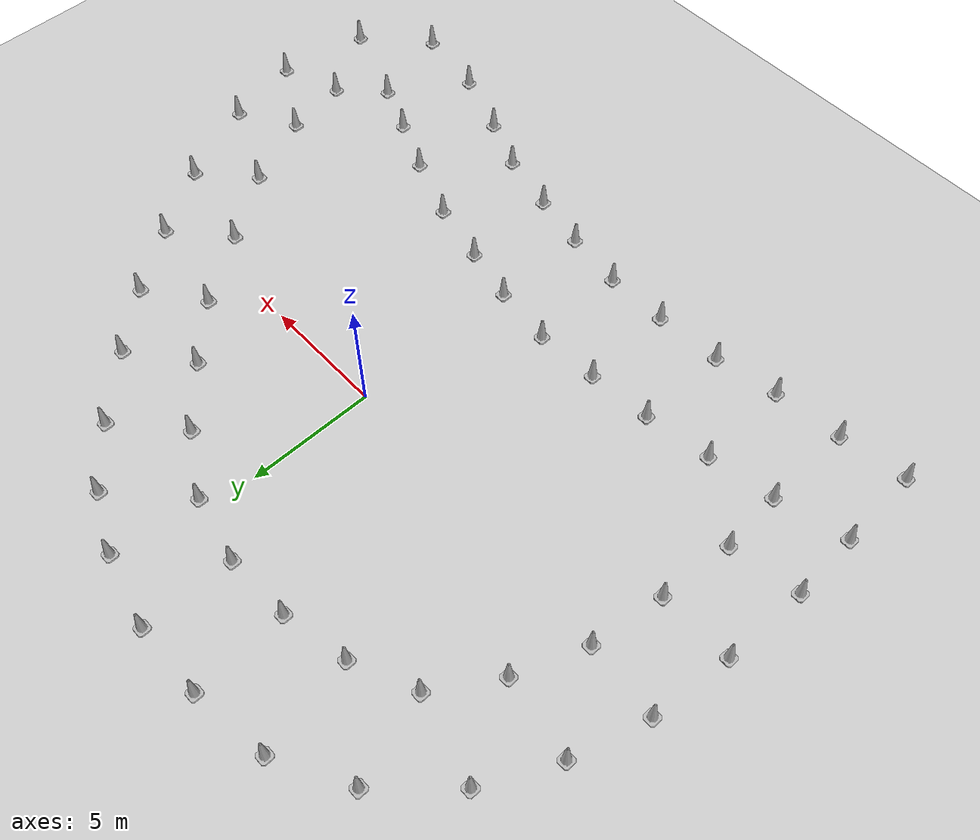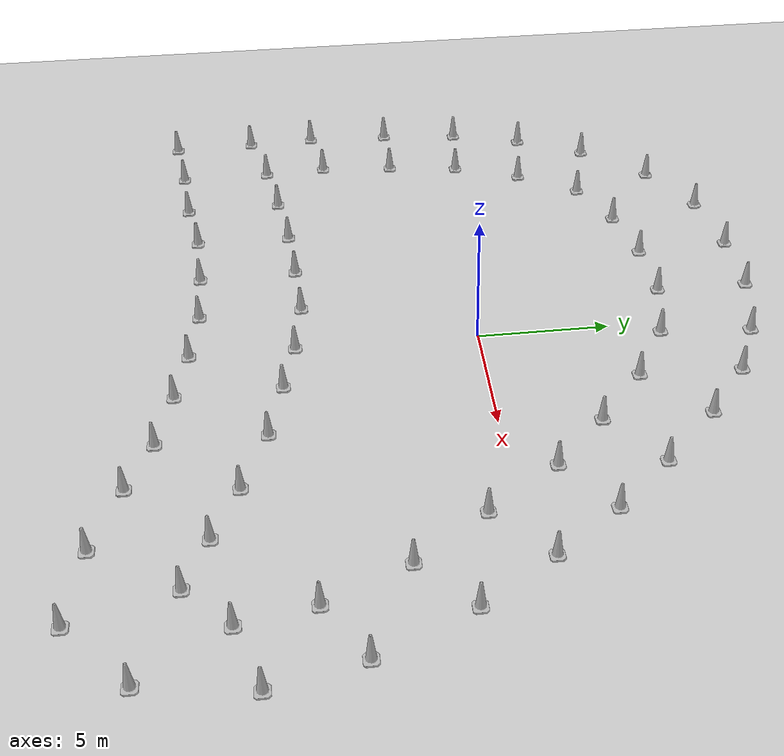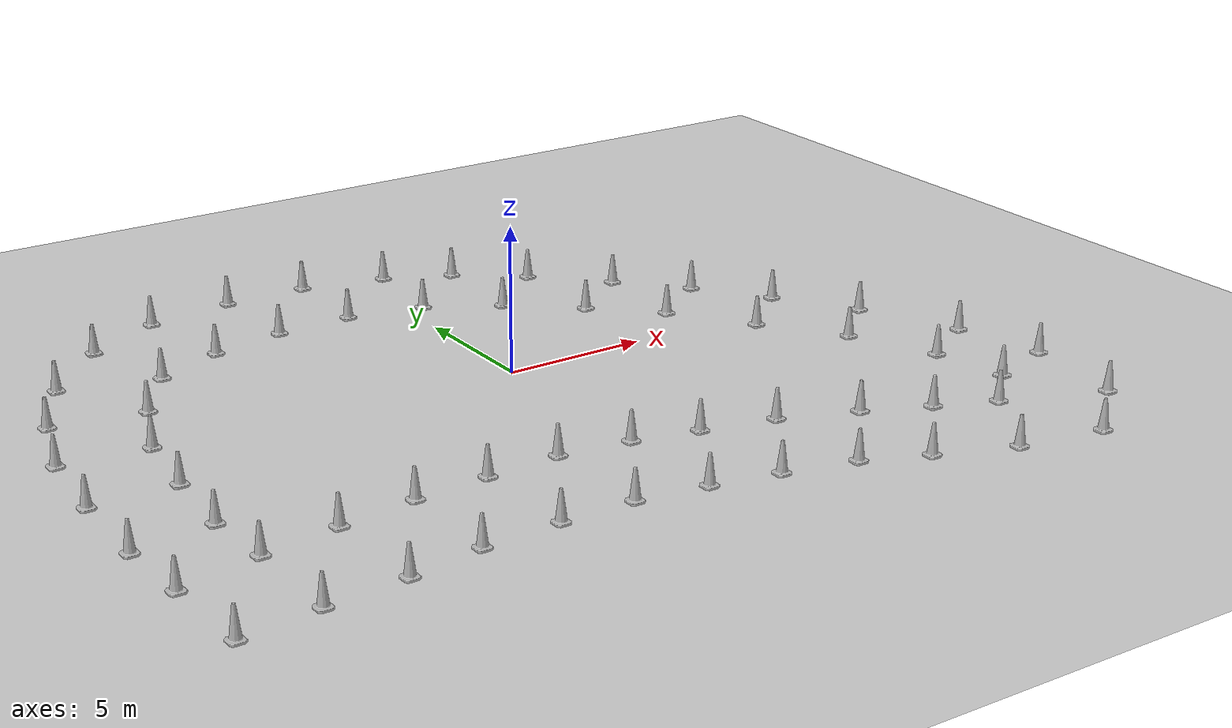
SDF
<sdf version="1.6">
 <world name="default">
  <light name="sun" type="directional">
   <pose>0 0 10 0 -0 0</pose>
   <diffuse>0.8 0.8 0.8 1</diffuse>
   <specular>0.2 0.2 0.2 1</specular>
   <attenuation>
    <range>1000</range>
    <constant>0.9</constant>
    <linear>0.01</linear>
    <quadratic>0.001</quadratic>
   </attenuation>
   <direction>-0.5 0.1 -0.9</direction>
  </light>
  <model name="ground_plane">
   <static>1</static>
   <link name="link">
    <collision name="collision">
     <geometry><plane><normal>0 0 1</normal><size>100 100</size></plane></geometry>
     <surface><friction><ode><mu>100</mu><mu2>50</mu2></ode></friction></surface>
    </collision>
    <visual name="visual">
     <cast_shadows>0</cast_shadows>
     <geometry><plane><normal>0 0 1</normal><size>100 100</size></plane></geometry>
     <material>
      <script><uri>file://media/materials/scripts/gazebo.material</uri><name>Gazebo/Grey</name></script>
     </material>
    </visual>
   </link>
  </model>
  <gravity>0 0 -9.8</gravity>
  <magnetic_field>6e-06 2.3e-05 -4.2e-05</magnetic_field>
  <atmosphere type="adiabatic"/>
  <physics name="default_physics" default="0" type="ode">
   <max_step_size>0.001</max_step_size>
   <real_time_factor>1</real_time_factor>
   <real_time_update_rate>1000</real_time_update_rate>
  </physics>
  <scene><ambient>0.4 0.4 0.4 1</ambient><background>0.7 0.7 0.7 1</background><shadows>1</shadows></scene>
  <audio><device>default</device></audio>
  <spherical_coordinates>
   <surface_model>EARTH_WGS84</surface_model>
   <latitude_deg>0</latitude_deg>
   <longitude_deg>0</longitude_deg>
   <elevation>0</elevation>
   <heading_deg>0</heading_deg>
  </spherical_coordinates>
  <model name="Construction Cone red">
   <link name="link">
    <collision name="collision">
     <geometry>
      <mesh><scale>10 10 10</scale><uri>model://construction_cone_red/meshes/construction_cone.dae</uri></mesh>
     </geometry>
    </collision>
    <visual name="visual">
     <geometry>
      <mesh><scale>10 10 10</scale><uri>model://construction_cone_red/meshes/construction_cone.dae</uri></mesh>
     </geometry>
    </visual>
    <inertial>
     <inertia><ixx>1</ixx><ixy>0</ixy><ixz>0</ixz><iyy>1</iyy><iyz>0</iyz><izz>1</izz></inertia>
     <mass>1</mass>
    </inertial>
   </link>
   <pose>-7.39961 6.86128 -0 0 -0 0</pose>
  </model>
  <model name="Construction Cone red_clone">
   <link name="link">
    <collision name="collision">
     <geometry>
      <mesh><scale>10 10 10</scale><uri>model://construction_cone_red/meshes/construction_cone.dae</uri></mesh>
     </geometry>
    </collision>
    <visual name="visual">
     <geometry>
      <mesh><scale>10 10 10</scale><uri>model://construction_cone_red/meshes/construction_cone.dae</uri></mesh>
     </geometry>
    </visual>
    <inertial>
     <inertia><ixx>1</ixx><ixy>0</ixy><ixz>0</ixz><iyy>1</iyy><iyz>0</iyz><izz>1</izz></inertia>
     <mass>1</mass>
    </inertial>
   </link>
   <pose>-4.7845 7.3824 0 -0 -0 -0</pose>
  </model>
  <model name="Construction Cone red_clone_0">
   <link name="link">
    <collision name="collision">
     <geometry>
      <mesh><scale>10 10 10</scale><uri>model://construction_cone_red/meshes/construction_cone.dae</uri></mesh>
     </geometry>
    </collision>
    <visual name="visual">
     <geometry>
      <mesh><scale>10 10 10</scale><uri>model://construction_cone_red/meshes/construction_cone.dae</uri></mesh>
     </geometry>
    </visual>
    <inertial>
     <inertia><ixx>1</ixx><ixy>0</ixy><ixz>0</ixz><iyy>1</iyy><iyz>0</iyz><izz>1</izz></inertia>
     <mass>1</mass>
    </inertial>
   </link>
   <pose>-2.07393 7.46969 -0 0 -0 0</pose>
  </model>
  <model name="Construction Cone red_clone_1">
   <link name="link">
    <collision name="collision">
     <geometry>
      <mesh><scale>10 10 10</scale><uri>model://construction_cone_red/meshes/construction_cone.dae</uri></mesh>
     </geometry>
    </collision>
    <visual name="visual">
     <geometry>
      <mesh><scale>10 10 10</scale><uri>model://construction_cone_red/meshes/construction_cone.dae</uri></mesh>
     </geometry>
    </visual>
    <inertial>
     <inertia><ixx>1</ixx><ixy>0</ixy><ixz>0</ixz><iyy>1</iyy><iyz>0</iyz><izz>1</izz></inertia>
     <mass>1</mass>
    </inertial>
   </link>
   <pose>0.613594 6.90702 -0 0 -0 0</pose>
  </model>
  <model name="Construction Cone red_clone_2">
   <link name="link">
    <collision name="collision">
     <geometry>
      <mesh><scale>10 10 10</scale><uri>model://construction_cone_red/meshes/construction_cone.dae</uri></mesh>
     </geometry>
    </collision>
    <visual name="visual">
     <geometry>
      <mesh><scale>10 10 10</scale><uri>model://construction_cone_red/meshes/construction_cone.dae</uri></mesh>
     </geometry>
    </visual>
    <inertial>
     <inertia><ixx>1</ixx><ixy>0</ixy><ixz>0</ixz><iyy>1</iyy><iyz>0</iyz><izz>1</izz></inertia>
     <mass>1</mass>
    </inertial>
   </link>
   <pose>3.06336 5.50508 -1e-06 2e-06 2e-06 0</pose>
  </model>
  <model name="Construction Cone red_clone_3">
   <link name="link">
    <collision name="collision">
     <geometry>
      <mesh><scale>10 10 10</scale><uri>model://construction_cone_red/meshes/construction_cone.dae</uri></mesh>
     </geometry>
    </collision>
    <visual name="visual">
     <geometry>
      <mesh><scale>10 10 10</scale><uri>model://construction_cone_red/meshes/construction_cone.dae</uri></mesh>
     </geometry>
    </visual>
    <inertial>
     <inertia><ixx>1</ixx><ixy>0</ixy><ixz>0</ixz><iyy>1</iyy><iyz>0</iyz><izz>1</izz></inertia>
     <mass>1</mass>
    </inertial>
   </link>
   <pose>5.34375 3.62293 -0 0 -0 0</pose>
  </model>
  <model name="Construction Cone red_clone_4">
   <link name="link">
    <collision name="collision">
     <geometry>
      <mesh><scale>10 10 10</scale><uri>model://construction_cone_red/meshes/construction_cone.dae</uri></mesh>
     </geometry>
    </collision>
    <visual name="visual">
     <geometry>
      <mesh><scale>10 10 10</scale><uri>model://construction_cone_red/meshes/construction_cone.dae</uri></mesh>
     </geometry>
    </visual>
    <inertial>
     <inertia><ixx>1</ixx><ixy>0</ixy><ixz>0</ixz><iyy>1</iyy><iyz>0</iyz><izz>1</izz></inertia>
     <mass>1</mass>
    </inertial>
   </link>
   <pose>7.43832 1.64441 -0 0 -1e-06 0</pose>
  </model>
  <model name="Construction Cone red_clone_5">
   <link name="link">
    <collision name="collision">
     <geometry>
      <mesh><scale>10 10 10</scale><uri>model://construction_cone_red/meshes/construction_cone.dae</uri></mesh>
     </geometry>
    </collision>
    <visual name="visual">
     <geometry>
      <mesh><scale>10 10 10</scale><uri>model://construction_cone_red/meshes/construction_cone.dae</uri></mesh>
     </geometry>
    </visual>
    <inertial>
     <inertia><ixx>1</ixx><ixy>0</ixy><ixz>0</ixz><iyy>1</iyy><iyz>0</iyz><izz>1</izz></inertia>
     <mass>1</mass>
    </inertial>
   </link>
   <pose>9.36342 -1.01193 -0 0 -0 0</pose>
  </model>
  <model name="Construction Cone red_clone_6">
   <link name="link">
    <collision name="collision">
     <geometry>
      <mesh><scale>10 10 10</scale><uri>model://construction_cone_red/meshes/construction_cone.dae</uri></mesh>
     </geometry>
    </collision>
    <visual name="visual">
     <geometry>
      <mesh><scale>10 10 10</scale><uri>model://construction_cone_red/meshes/construction_cone.dae</uri></mesh>
     </geometry>
    </visual>
    <inertial>
     <inertia><ixx>1</ixx><ixy>0</ixy><ixz>0</ixz><iyy>1</iyy><iyz>0</iyz><izz>1</izz></inertia>
     <mass>1</mass>
    </inertial>
   </link>
   <pose>11.2968 -3.64403 -0 0 -0 0</pose>
  </model>
  <model name="Construction Cone red_clone_7">
   <link name="link">
    <collision name="collision">
     <geometry>
      <mesh><scale>10 10 10</scale><uri>model://construction_cone_red/meshes/construction_cone.dae</uri></mesh>
     </geometry>
    </collision>
    <visual name="visual">
     <geometry>
      <mesh><scale>10 10 10</scale><uri>model://construction_cone_red/meshes/construction_cone.dae</uri></mesh>
     </geometry>
    </visual>
    <inertial>
     <inertia><ixx>1</ixx><ixy>0</ixy><ixz>0</ixz><iyy>1</iyy><iyz>0</iyz><izz>1</izz></inertia>
     <mass>1</mass>
    </inertial>
   </link>
   <pose>12.6487 -6.60335 -1e-05 -0 -0 -0</pose>
  </model>
  <model name="Construction Cone red_clone_8">
   <link name="link">
    <collision name="collision">
     <geometry>
      <mesh><scale>10 10 10</scale><uri>model://construction_cone_red/meshes/construction_cone.dae</uri></mesh>
     </geometry>
    </collision>
    <visual name="visual">
     <geometry>
      <mesh><scale>10 10 10</scale><uri>model://construction_cone_red/meshes/construction_cone.dae</uri></mesh>
     </geometry>
    </visual>
    <inertial>
     <inertia><ixx>1</ixx><ixy>0</ixy><ixz>0</ixz><iyy>1</iyy><iyz>0</iyz><izz>1</izz></inertia>
     <mass>1</mass>
    </inertial>
   </link>
   <pose>11.5226 -10.7455 -0 0 -0 0</pose>
  </model>
  <model name="Construction Cone red_clone_9">
   <link name="link">
    <collision name="collision">
     <geometry>
      <mesh><scale>10 10 10</scale><uri>model://construction_cone_red/meshes/construction_cone.dae</uri></mesh>
     </geometry>
    </collision>
    <visual name="visual">
     <geometry>
      <mesh><scale>10 10 10</scale><uri>model://construction_cone_red/meshes/construction_cone.dae</uri></mesh>
     </geometry>
    </visual>
    <inertial>
     <inertia><ixx>1</ixx><ixy>0</ixy><ixz>0</ixz><iyy>1</iyy><iyz>0</iyz><izz>1</izz></inertia>
     <mass>1</mass>
    </inertial>
   </link>
   <pose>13.144 -9.19348 -0 0 -0 0</pose>
  </model>
  <model name="Construction Cone red_clone_10">
   <link name="link">
    <collision name="collision">
     <geometry>
      <mesh><scale>10 10 10</scale><uri>model://construction_cone_red/meshes/construction_cone.dae</uri></mesh>
     </geometry>
    </collision>
    <visual name="visual">
     <geometry>
      <mesh><scale>10 10 10</scale><uri>model://construction_cone_red/meshes/construction_cone.dae</uri></mesh>
     </geometry>
    </visual>
    <inertial>
     <inertia><ixx>1</ixx><ixy>0</ixy><ixz>0</ixz><iyy>1</iyy><iyz>0</iyz><izz>1</izz></inertia>
     <mass>1</mass>
    </inertial>
   </link>
   <pose>9.50159 -9.89972 -0 0 -1e-06 0</pose>
  </model>
  <model name="Construction Cone red_clone_11">
   <link name="link">
    <collision name="collision">
     <geometry>
      <mesh><scale>10 10 10</scale><uri>model://construction_cone_red/meshes/construction_cone.dae</uri></mesh>
     </geometry>
    </collision>
    <visual name="visual">
     <geometry>
      <mesh><scale>10 10 10</scale><uri>model://construction_cone_red/meshes/construction_cone.dae</uri></mesh>
     </geometry>
    </visual>
    <inertial>
     <inertia><ixx>1</ixx><ixy>0</ixy><ixz>0</ixz><iyy>1</iyy><iyz>0</iyz><izz>1</izz></inertia>
     <mass>1</mass>
    </inertial>
   </link>
   <pose>7.31105 -8.93569 -0 0 -0 0</pose>
  </model>
  <model name="Construction Cone red_clone_12">
   <link name="link">
    <collision name="collision">
     <geometry>
      <mesh><scale>10 10 10</scale><uri>model://construction_cone_red/meshes/construction_cone.dae</uri></mesh>
     </geometry>
    </collision>
    <visual name="visual">
     <geometry>
      <mesh><scale>10 10 10</scale><uri>model://construction_cone_red/meshes/construction_cone.dae</uri></mesh>
     </geometry>
    </visual>
    <inertial>
     <inertia><ixx>1</ixx><ixy>0</ixy><ixz>0</ixz><iyy>1</iyy><iyz>0</iyz><izz>1</izz></inertia>
     <mass>1</mass>
    </inertial>
   </link>
   <pose>4.73701 -7.9611 -0 0 -0 0</pose>
  </model>
  <model name="Construction Cone red_clone_13">
   <link name="link">
    <collision name="collision">
     <geometry>
      <mesh><scale>10 10 10</scale><uri>model://construction_cone_red/meshes/construction_cone.dae</uri></mesh>
     </geometry>
    </collision>
    <visual name="visual">
     <geometry>
      <mesh><scale>10 10 10</scale><uri>model://construction_cone_red/meshes/construction_cone.dae</uri></mesh>
     </geometry>
    </visual>
    <inertial>
     <inertia><ixx>1</ixx><ixy>0</ixy><ixz>0</ixz><iyy>1</iyy><iyz>0</iyz><izz>1</izz></inertia>
     <mass>1</mass>
    </inertial>
   </link>
   <pose>2.21819 -7.37293 -0 0 -0 0</pose>
  </model>
  <model name="Construction Cone red_clone_14">
   <link name="link">
    <collision name="collision">
     <geometry>
      <mesh><scale>10 10 10</scale><uri>model://construction_cone_red/meshes/construction_cone.dae</uri></mesh>
     </geometry>
    </collision>
    <visual name="visual">
     <geometry>
      <mesh><scale>10 10 10</scale><uri>model://construction_cone_red/meshes/construction_cone.dae</uri></mesh>
     </geometry>
    </visual>
    <inertial>
     <inertia><ixx>1</ixx><ixy>0</ixy><ixz>0</ixz><iyy>1</iyy><iyz>0</iyz><izz>1</izz></inertia>
     <mass>1</mass>
    </inertial>
   </link>
   <pose>-0.013315 -6.86463 -8e-06 0 1e-06 0</pose>
  </model>
  <model name="Construction Cone red_clone_15">
   <link name="link">
    <collision name="collision">
     <geometry>
      <mesh><scale>10 10 10</scale><uri>model://construction_cone_red/meshes/construction_cone.dae</uri></mesh>
     </geometry>
    </collision>
    <visual name="visual">
     <geometry>
      <mesh><scale>10 10 10</scale><uri>model://construction_cone_red/meshes/construction_cone.dae</uri></mesh>
     </geometry>
    </visual>
    <inertial>
     <inertia><ixx>1</ixx><ixy>0</ixy><ixz>0</ixz><iyy>1</iyy><iyz>0</iyz><izz>1</izz></inertia>
     <mass>1</mass>
    </inertial>
   </link>
   <pose>-2.46811 -6.54172 -0 0 -0 0</pose>
  </model>
  <model name="Construction Cone red_clone_16">
   <link name="link">
    <collision name="collision">
     <geometry>
      <mesh><scale>10 10 10</scale><uri>model://construction_cone_red/meshes/construction_cone.dae</uri></mesh>
     </geometry>
    </collision>
    <visual name="visual">
     <geometry>
      <mesh><scale>10 10 10</scale><uri>model://construction_cone_red/meshes/construction_cone.dae</uri></mesh>
     </geometry>
    </visual>
    <inertial>
     <inertia><ixx>1</ixx><ixy>0</ixy><ixz>0</ixz><iyy>1</iyy><iyz>0</iyz><izz>1</izz></inertia>
     <mass>1</mass>
    </inertial>
   </link>
   <pose>-5.01525 -6.67318 -1e-05 0 -0 0</pose>
  </model>
  <model name="Construction Cone red_clone_17">
   <link name="link">
    <collision name="collision">
     <geometry>
      <mesh><scale>10 10 10</scale><uri>model://construction_cone_red/meshes/construction_cone.dae</uri></mesh>
     </geometry>
    </collision>
    <visual name="visual">
     <geometry>
      <mesh><scale>10 10 10</scale><uri>model://construction_cone_red/meshes/construction_cone.dae</uri></mesh>
     </geometry>
    </visual>
    <inertial>
     <inertia><ixx>1</ixx><ixy>0</ixy><ixz>0</ixz><iyy>1</iyy><iyz>0</iyz><izz>1</izz></inertia>
     <mass>1</mass>
    </inertial>
   </link>
   <pose>-9.80902 5.8137 -0 0 -0 0</pose>
  </model>
  <model name="Construction Cone red_clone_20">
   <link name="link">
    <collision name="collision">
     <geometry>
      <mesh><scale>10 10 10</scale><uri>model://construction_cone_red/meshes/construction_cone.dae</uri></mesh>
     </geometry>
    </collision>
    <visual name="visual">
     <geometry>
      <mesh><scale>10 10 10</scale><uri>model://construction_cone_red/meshes/construction_cone.dae</uri></mesh>
     </geometry>
    </visual>
    <inertial>
     <inertia><ixx>1</ixx><ixy>0</ixy><ixz>0</ixz><iyy>1</iyy><iyz>0</iyz><izz>1</izz></inertia>
     <mass>1</mass>
    </inertial>
   </link>
   <pose>-11.3247 3.45221 -0 0 -1e-06 0</pose>
  </model>
  <model name="Construction Cone red_clone_21">
   <link name="link">
    <collision name="collision">
     <geometry>
      <mesh><scale>10 10 10</scale><uri>model://construction_cone_red/meshes/construction_cone.dae</uri></mesh>
     </geometry>
    </collision>
    <visual name="visual">
     <geometry>
      <mesh><scale>10 10 10</scale><uri>model://construction_cone_red/meshes/construction_cone.dae</uri></mesh>
     </geometry>
    </visual>
    <inertial>
     <inertia><ixx>1</ixx><ixy>0</ixy><ixz>0</ixz><iyy>1</iyy><iyz>0</iyz><izz>1</izz></inertia>
     <mass>1</mass>
    </inertial>
   </link>
   <pose>-12.3578 0.775305 -0 0 -1e-06 0</pose>
  </model>
  <model name="Construction Cone red_clone_22">
   <link name="link">
    <collision name="collision">
     <geometry>
      <mesh><scale>10 10 10</scale><uri>model://construction_cone_red/meshes/construction_cone.dae</uri></mesh>
     </geometry>
    </collision>
    <visual name="visual">
     <geometry>
      <mesh><scale>10 10 10</scale><uri>model://construction_cone_red/meshes/construction_cone.dae</uri></mesh>
     </geometry>
    </visual>
    <inertial>
     <inertia><ixx>1</ixx><ixy>0</ixy><ixz>0</ixz><iyy>1</iyy><iyz>0</iyz><izz>1</izz></inertia>
     <mass>1</mass>
    </inertial>
   </link>
   <pose>-12.766 -2.13898 -0 0 -0 0</pose>
  </model>
  <model name="Construction Cone red_clone_23">
   <link name="link">
    <collision name="collision">
     <geometry>
      <mesh><scale>10 10 10</scale><uri>model://construction_cone_red/meshes/construction_cone.dae</uri></mesh>
     </geometry>
    </collision>
    <visual name="visual">
     <geometry>
      <mesh><scale>10 10 10</scale><uri>model://construction_cone_red/meshes/construction_cone.dae</uri></mesh>
     </geometry>
    </visual>
    <inertial>
     <inertia><ixx>1</ixx><ixy>0</ixy><ixz>0</ixz><iyy>1</iyy><iyz>0</iyz><izz>1</izz></inertia>
     <mass>1</mass>
    </inertial>
   </link>
   <pose>-13.0288 -5.11824 -0 0 -0 0</pose>
  </model>
  <model name="Construction Cone red_clone_24">
   <link name="link">
    <collision name="collision">
     <geometry>
      <mesh><scale>10 10 10</scale><uri>model://construction_cone_red/meshes/construction_cone.dae</uri></mesh>
     </geometry>
    </collision>
    <visual name="visual">
     <geometry>
      <mesh><scale>10 10 10</scale><uri>model://construction_cone_red/meshes/construction_cone.dae</uri></mesh>
     </geometry>
    </visual>
    <inertial>
     <inertia><ixx>1</ixx><ixy>0</ixy><ixz>0</ixz><iyy>1</iyy><iyz>0</iyz><izz>1</izz></inertia>
     <mass>1</mass>
    </inertial>
   </link>
   <pose>-12.8574 -7.63087 -0 0 -0 0</pose>
  </model>
  <model name="Construction Cone red_clone_25">
   <link name="link">
    <collision name="collision">
     <geometry>
      <mesh><scale>10 10 10</scale><uri>model://construction_cone_red/meshes/construction_cone.dae</uri></mesh>
     </geometry>
    </collision>
    <visual name="visual">
     <geometry>
      <mesh><scale>10 10 10</scale><uri>model://construction_cone_red/meshes/construction_cone.dae</uri></mesh>
     </geometry>
    </visual>
    <inertial>
     <inertia><ixx>1</ixx><ixy>0</ixy><ixz>0</ixz><iyy>1</iyy><iyz>0</iyz><izz>1</izz></inertia>
     <mass>1</mass>
    </inertial>
   </link>
   <pose>-10.2213 -7.21588 -0 0 -1e-06 0</pose>
  </model>
  <model name="Construction Cone red_clone_26">
   <link name="link">
    <collision name="collision">
     <geometry>
      <mesh><scale>10 10 10</scale><uri>model://construction_cone_red/meshes/construction_cone.dae</uri></mesh>
     </geometry>
    </collision>
    <visual name="visual">
     <geometry>
      <mesh><scale>10 10 10</scale><uri>model://construction_cone_red/meshes/construction_cone.dae</uri></mesh>
     </geometry>
    </visual>
    <inertial>
     <inertia><ixx>1</ixx><ixy>0</ixy><ixz>0</ixz><iyy>1</iyy><iyz>0</iyz><izz>1</izz></inertia>
     <mass>1</mass>
    </inertial>
   </link>
   <pose>-7.57021 -6.85561 -0 0 -0 0</pose>
  </model>
  <model name="Construction Cone blue">
   <link name="link">
    <collision name="collision">
     <geometry>
      <mesh><scale>10 10 10</scale><uri>model://construction_cone_blue/meshes/construction_cone.dae</uri></mesh>
     </geometry>
    </collision>
    <visual name="visual">
     <geometry>
      <mesh><scale>10 10 10</scale><uri>model://construction_cone_blue/meshes/construction_cone.dae</uri></mesh>
     </geometry>
    </visual>
    <inertial>
     <inertia><ixx>1</ixx><ixy>0</ixy><ixz>0</ixz><iyy>1</iyy><iyz>0</iyz><izz>1</izz></inertia>
     <mass>1</mass>
    </inertial>
   </link>
   <pose>-15.6523 -2.14418 -1e-05 0 -0 0</pose>
  </model>
  <model name="Construction Cone blue_clone">
   <link name="link">
    <collision name="collision">
     <geometry>
      <mesh><scale>10 10 10</scale><uri>model://construction_cone_blue/meshes/construction_cone.dae</uri></mesh>
     </geometry>
    </collision>
    <visual name="visual">
     <geometry>
      <mesh><scale>10 10 10</scale><uri>model://construction_cone_blue/meshes/construction_cone.dae</uri></mesh>
     </geometry>
    </visual>
    <inertial>
     <inertia><ixx>1</ixx><ixy>0</ixy><ixz>0</ixz><iyy>1</iyy><iyz>0</iyz><izz>1</izz></inertia>
     <mass>1</mass>
    </inertial>
   </link>
   <pose>-15.3157 1.06413 -0 0 -0 0</pose>
  </model>
  <model name="Construction Cone blue_clone_0">
   <link name="link">
    <collision name="collision">
     <geometry>
      <mesh><scale>10 10 10</scale><uri>model://construction_cone_blue/meshes/construction_cone.dae</uri></mesh>
     </geometry>
    </collision>
    <visual name="visual">
     <geometry>
      <mesh><scale>10 10 10</scale><uri>model://construction_cone_blue/meshes/construction_cone.dae</uri></mesh>
     </geometry>
    </visual>
    <inertial>
     <inertia><ixx>1</ixx><ixy>0</ixy><ixz>0</ixz><iyy>1</iyy><iyz>0</iyz><izz>1</izz></inertia>
     <mass>1</mass>
    </inertial>
   </link>
   <pose>-14.4492 3.96251 -0 0 -0 0</pose>
  </model>
  <model name="Construction Cone blue_clone_1">
   <link name="link">
    <collision name="collision">
     <geometry>
      <mesh><scale>10 10 10</scale><uri>model://construction_cone_blue/meshes/construction_cone.dae</uri></mesh>
     </geometry>
    </collision>
    <visual name="visual">
     <geometry>
      <mesh><scale>10 10 10</scale><uri>model://construction_cone_blue/meshes/construction_cone.dae</uri></mesh>
     </geometry>
    </visual>
    <inertial>
     <inertia><ixx>1</ixx><ixy>0</ixy><ixz>0</ixz><iyy>1</iyy><iyz>0</iyz><izz>1</izz></inertia>
     <mass>1</mass>
    </inertial>
   </link>
   <pose>-13.0885 6.66805 -0 0 -0 0</pose>
  </model>
  <model name="Construction Cone blue_clone_2">
   <link name="link">
    <collision name="collision">
     <geometry>
      <mesh><scale>10 10 10</scale><uri>model://construction_cone_blue/meshes/construction_cone.dae</uri></mesh>
     </geometry>
    </collision>
    <visual name="visual">
     <geometry>
      <mesh><scale>10 10 10</scale><uri>model://construction_cone_blue/meshes/construction_cone.dae</uri></mesh>
     </geometry>
    </visual>
    <inertial>
     <inertia><ixx>1</ixx><ixy>0</ixy><ixz>0</ixz><iyy>1</iyy><iyz>0</iyz><izz>1</izz></inertia>
     <mass>1</mass>
    </inertial>
   </link>
   <pose>-10.7962 9.14259 0 -0 -0 -0</pose>
  </model>
  <model name="Construction Cone blue_clone_3">
   <link name="link">
    <collision name="collision">
     <geometry>
      <mesh><scale>10 10 10</scale><uri>model://construction_cone_blue/meshes/construction_cone.dae</uri></mesh>
     </geometry>
    </collision>
    <visual name="visual">
     <geometry>
      <mesh><scale>10 10 10</scale><uri>model://construction_cone_blue/meshes/construction_cone.dae</uri></mesh>
     </geometry>
    </visual>
    <inertial>
     <inertia><ixx>1</ixx><ixy>0</ixy><ixz>0</ixz><iyy>1</iyy><iyz>0</iyz><izz>1</izz></inertia>
     <mass>1</mass>
    </inertial>
   </link>
   <pose>-8.07869 10.6191 -0 0 -0 0</pose>
  </model>
  <model name="Construction Cone blue_clone_5">
   <link name="link">
    <collision name="collision">
     <geometry>
      <mesh><scale>10 10 10</scale><uri>model://construction_cone_blue/meshes/construction_cone.dae</uri></mesh>
     </geometry>
    </collision>
    <visual name="visual">
     <geometry>
      <mesh><scale>10 10 10</scale><uri>model://construction_cone_blue/meshes/construction_cone.dae</uri></mesh>
     </geometry>
    </visual>
    <inertial>
     <inertia><ixx>1</ixx><ixy>0</ixy><ixz>0</ixz><iyy>1</iyy><iyz>0</iyz><izz>1</izz></inertia>
     <mass>1</mass>
    </inertial>
   </link>
   <pose>-4.98374 11.0467 -0 0 -0 0</pose>
  </model>
  <model name="Construction Cone blue_clone_6">
   <link name="link">
    <collision name="collision">
     <geometry>
      <mesh><scale>10 10 10</scale><uri>model://construction_cone_blue/meshes/construction_cone.dae</uri></mesh>
     </geometry>
    </collision>
    <visual name="visual">
     <geometry>
      <mesh><scale>10 10 10</scale><uri>model://construction_cone_blue/meshes/construction_cone.dae</uri></mesh>
     </geometry>
    </visual>
    <inertial>
     <inertia><ixx>1</ixx><ixy>0</ixy><ixz>0</ixz><iyy>1</iyy><iyz>0</iyz><izz>1</izz></inertia>
     <mass>1</mass>
    </inertial>
   </link>
   <pose>-2.0331 11.0255 -0 0 -0 0</pose>
  </model>
  <model name="Construction Cone blue_clone_7">
   <link name="link">
    <collision name="collision">
     <geometry>
      <mesh><scale>10 10 10</scale><uri>model://construction_cone_blue/meshes/construction_cone.dae</uri></mesh>
     </geometry>
    </collision>
    <visual name="visual">
     <geometry>
      <mesh><scale>10 10 10</scale><uri>model://construction_cone_blue/meshes/construction_cone.dae</uri></mesh>
     </geometry>
    </visual>
    <inertial>
     <inertia><ixx>1</ixx><ixy>0</ixy><ixz>0</ixz><iyy>1</iyy><iyz>0</iyz><izz>1</izz></inertia>
     <mass>1</mass>
    </inertial>
   </link>
   <pose>0.913636 10.3346 -0 0 -0 0</pose>
  </model>
  <model name="Construction Cone blue_clone_8">
   <link name="link">
    <collision name="collision">
     <geometry>
      <mesh><scale>10 10 10</scale><uri>model://construction_cone_blue/meshes/construction_cone.dae</uri></mesh>
     </geometry>
    </collision>
    <visual name="visual">
     <geometry>
      <mesh><scale>10 10 10</scale><uri>model://construction_cone_blue/meshes/construction_cone.dae</uri></mesh>
     </geometry>
    </visual>
    <inertial>
     <inertia><ixx>1</ixx><ixy>0</ixy><ixz>0</ixz><iyy>1</iyy><iyz>0</iyz><izz>1</izz></inertia>
     <mass>1</mass>
    </inertial>
   </link>
   <pose>3.21042 9.30007 -0 0 -0 0</pose>
  </model>
  <model name="Construction Cone blue_clone_9">
   <link name="link">
    <collision name="collision">
     <geometry>
      <mesh><scale>10 10 10</scale><uri>model://construction_cone_blue/meshes/construction_cone.dae</uri></mesh>
     </geometry>
    </collision>
    <visual name="visual">
     <geometry>
      <mesh><scale>10 10 10</scale><uri>model://construction_cone_blue/meshes/construction_cone.dae</uri></mesh>
     </geometry>
    </visual>
    <inertial>
     <inertia><ixx>1</ixx><ixy>0</ixy><ixz>0</ixz><iyy>1</iyy><iyz>0</iyz><izz>1</izz></inertia>
     <mass>1</mass>
    </inertial>
   </link>
   <pose>5.42837 7.57941 -0 -0 -0 -0</pose>
  </model>
  <model name="Construction Cone blue_clone_10">
   <link name="link">
    <collision name="collision">
     <geometry>
      <mesh><scale>10 10 10</scale><uri>model://construction_cone_blue/meshes/construction_cone.dae</uri></mesh>
     </geometry>
    </collision>
    <visual name="visual">
     <geometry>
      <mesh><scale>10 10 10</scale><uri>model://construction_cone_blue/meshes/construction_cone.dae</uri></mesh>
     </geometry>
    </visual>
    <inertial>
     <inertia><ixx>1</ixx><ixy>0</ixy><ixz>0</ixz><iyy>1</iyy><iyz>0</iyz><izz>1</izz></inertia>
     <mass>1</mass>
    </inertial>
   </link>
   <pose>7.69021 5.37326 -0 0 -0 0</pose>
  </model>
  <model name="Construction Cone blue_clone_11">
   <link name="link">
    <collision name="collision">
     <geometry>
      <mesh><scale>10 10 10</scale><uri>model://construction_cone_blue/meshes/construction_cone.dae</uri></mesh>
     </geometry>
    </collision>
    <visual name="visual">
     <geometry>
      <mesh><scale>10 10 10</scale><uri>model://construction_cone_blue/meshes/construction_cone.dae</uri></mesh>
     </geometry>
    </visual>
    <inertial>
     <inertia><ixx>1</ixx><ixy>0</ixy><ixz>0</ixz><iyy>1</iyy><iyz>0</iyz><izz>1</izz></inertia>
     <mass>1</mass>
    </inertial>
   </link>
   <pose>9.67845 3.24274 -0 0 -0 0</pose>
  </model>
  <model name="Construction Cone blue_clone_12">
   <link name="link">
    <collision name="collision">
     <geometry>
      <mesh><scale>10 10 10</scale><uri>model://construction_cone_blue/meshes/construction_cone.dae</uri></mesh>
     </geometry>
    </collision>
    <visual name="visual">
     <geometry>
      <mesh><scale>10 10 10</scale><uri>model://construction_cone_blue/meshes/construction_cone.dae</uri></mesh>
     </geometry>
    </visual>
    <inertial>
     <inertia><ixx>1</ixx><ixy>0</ixy><ixz>0</ixz><iyy>1</iyy><iyz>0</iyz><izz>1</izz></inertia>
     <mass>1</mass>
    </inertial>
   </link>
   <pose>12.575 -14.2388 -0 0 -0 0</pose>
  </model>
  <model name="Construction Cone blue_clone_13">
   <link name="link">
    <collision name="collision">
     <geometry>
      <mesh><scale>10 10 10</scale><uri>model://construction_cone_blue/meshes/construction_cone.dae</uri></mesh>
     </geometry>
    </collision>
    <visual name="visual">
     <geometry>
      <mesh><scale>10 10 10</scale><uri>model://construction_cone_blue/meshes/construction_cone.dae</uri></mesh>
     </geometry>
    </visual>
    <inertial>
     <inertia><ixx>1</ixx><ixy>0</ixy><ixz>0</ixz><iyy>1</iyy><iyz>0</iyz><izz>1</izz></inertia>
     <mass>1</mass>
    </inertial>
   </link>
   <pose>15.0218 -12.0809 -0 0 -0 0</pose>
  </model>
  <model name="Construction Cone blue_clone_14">
   <link name="link">
    <collision name="collision">
     <geometry>
      <mesh><scale>10 10 10</scale><uri>model://construction_cone_blue/meshes/construction_cone.dae</uri></mesh>
     </geometry>
    </collision>
    <visual name="visual">
     <geometry>
      <mesh><scale>10 10 10</scale><uri>model://construction_cone_blue/meshes/construction_cone.dae</uri></mesh>
     </geometry>
    </visual>
    <inertial>
     <inertia><ixx>1</ixx><ixy>0</ixy><ixz>0</ixz><iyy>1</iyy><iyz>0</iyz><izz>1</izz></inertia>
     <mass>1</mass>
    </inertial>
   </link>
   <pose>11.4937 0.834214 -0 0 -0 0</pose>
  </model>
  <model name="Construction Cone blue_clone_15">
   <link name="link">
    <collision name="collision">
     <geometry>
      <mesh><scale>10 10 10</scale><uri>model://construction_cone_blue/meshes/construction_cone.dae</uri></mesh>
     </geometry>
    </collision>
    <visual name="visual">
     <geometry>
      <mesh><scale>10 10 10</scale><uri>model://construction_cone_blue/meshes/construction_cone.dae</uri></mesh>
     </geometry>
    </visual>
    <inertial>
     <inertia><ixx>1</ixx><ixy>0</ixy><ixz>0</ixz><iyy>1</iyy><iyz>0</iyz><izz>1</izz></inertia>
     <mass>1</mass>
    </inertial>
   </link>
   <pose>13.2818 -1.84599 -0 0 -0 0</pose>
  </model>
  <model name="Construction Cone blue_clone_16">
   <link name="link">
    <collision name="collision">
     <geometry>
      <mesh><scale>10 10 10</scale><uri>model://construction_cone_blue/meshes/construction_cone.dae</uri></mesh>
     </geometry>
    </collision>
    <visual name="visual">
     <geometry>
      <mesh><scale>10 10 10</scale><uri>model://construction_cone_blue/meshes/construction_cone.dae</uri></mesh>
     </geometry>
    </visual>
    <inertial>
     <inertia><ixx>1</ixx><ixy>0</ixy><ixz>0</ixz><iyy>1</iyy><iyz>0</iyz><izz>1</izz></inertia>
     <mass>1</mass>
    </inertial>
   </link>
   <pose>15.6024 -8.37283 -0 0 -0 0</pose>
  </model>
  <model name="Construction Cone blue_clone_17">
   <link name="link">
    <collision name="collision">
     <geometry>
      <mesh><scale>10 10 10</scale><uri>model://construction_cone_blue/meshes/construction_cone.dae</uri></mesh>
     </geometry>
    </collision>
    <visual name="visual">
     <geometry>
      <mesh><scale>10 10 10</scale><uri>model://construction_cone_blue/meshes/construction_cone.dae</uri></mesh>
     </geometry>
    </visual>
    <inertial>
     <inertia><ixx>1</ixx><ixy>0</ixy><ixz>0</ixz><iyy>1</iyy><iyz>0</iyz><izz>1</izz></inertia>
     <mass>1</mass>
    </inertial>
   </link>
   <pose>9.54958 -13.7256 -0 0 -0 0</pose>
  </model>
  <model name="Construction Cone blue_clone_18">
   <link name="link">
    <collision name="collision">
     <geometry>
      <mesh><scale>10 10 10</scale><uri>model://construction_cone_blue/meshes/construction_cone.dae</uri></mesh>
     </geometry>
    </collision>
    <visual name="visual">
     <geometry>
      <mesh><scale>10 10 10</scale><uri>model://construction_cone_blue/meshes/construction_cone.dae</uri></mesh>
     </geometry>
    </visual>
    <inertial>
     <inertia><ixx>1</ixx><ixy>0</ixy><ixz>0</ixz><iyy>1</iyy><iyz>0</iyz><izz>1</izz></inertia>
     <mass>1</mass>
    </inertial>
   </link>
   <pose>-15.5088 -11.6144 -0 0 -0 0</pose>
  </model>
  <model name="Construction Cone blue_clone_19">
   <link name="link">
    <collision name="collision">
     <geometry>
      <mesh><scale>10 10 10</scale><uri>model://construction_cone_blue/meshes/construction_cone.dae</uri></mesh>
     </geometry>
    </collision>
    <visual name="visual">
     <geometry>
      <mesh><scale>10 10 10</scale><uri>model://construction_cone_blue/meshes/construction_cone.dae</uri></mesh>
     </geometry>
    </visual>
    <inertial>
     <inertia><ixx>1</ixx><ixy>0</ixy><ixz>0</ixz><iyy>1</iyy><iyz>0</iyz><izz>1</izz></inertia>
     <mass>1</mass>
    </inertial>
   </link>
   <pose>-15.6442 -8.29495 -0 -0 -0 -0</pose>
  </model>
  <model name="Construction Cone blue_clone_20">
   <link name="link">
    <collision name="collision">
     <geometry>
      <mesh><scale>10 10 10</scale><uri>model://construction_cone_blue/meshes/construction_cone.dae</uri></mesh>
     </geometry>
    </collision>
    <visual name="visual">
     <geometry>
      <mesh><scale>10 10 10</scale><uri>model://construction_cone_blue/meshes/construction_cone.dae</uri></mesh>
     </geometry>
    </visual>
    <inertial>
     <inertia><ixx>1</ixx><ixy>0</ixy><ixz>0</ixz><iyy>1</iyy><iyz>0</iyz><izz>1</izz></inertia>
     <mass>1</mass>
    </inertial>
   </link>
   <pose>6.90699 -12.7387 -0 0 -0 0</pose>
  </model>
  <model name="Construction Cone blue_clone_21">
   <link name="link">
    <collision name="collision">
     <geometry>
      <mesh><scale>10 10 10</scale><uri>model://construction_cone_blue/meshes/construction_cone.dae</uri></mesh>
     </geometry>
    </collision>
    <visual name="visual">
     <geometry>
      <mesh><scale>10 10 10</scale><uri>model://construction_cone_blue/meshes/construction_cone.dae</uri></mesh>
     </geometry>
    </visual>
    <inertial>
     <inertia><ixx>1</ixx><ixy>0</ixy><ixz>0</ixz><iyy>1</iyy><iyz>0</iyz><izz>1</izz></inertia>
     <mass>1</mass>
    </inertial>
   </link>
   <pose>4.79464 -11.8385 -0 0 -0 0</pose>
  </model>
  <model name="Construction Cone blue_clone_22">
   <link name="link">
    <collision name="collision">
     <geometry>
      <mesh><scale>10 10 10</scale><uri>model://construction_cone_blue/meshes/construction_cone.dae</uri></mesh>
     </geometry>
    </collision>
    <visual name="visual">
     <geometry>
      <mesh><scale>10 10 10</scale><uri>model://construction_cone_blue/meshes/construction_cone.dae</uri></mesh>
     </geometry>
    </visual>
    <inertial>
     <inertia><ixx>1</ixx><ixy>0</ixy><ixz>0</ixz><iyy>1</iyy><iyz>0</iyz><izz>1</izz></inertia>
     <mass>1</mass>
    </inertial>
   </link>
   <pose>2.33318 -11.2537 -8e-06 0 1e-06 0</pose>
  </model>
  <model name="Construction Cone blue_clone_23">
   <link name="link">
    <collision name="collision">
     <geometry>
      <mesh><scale>10 10 10</scale><uri>model://construction_cone_blue/meshes/construction_cone.dae</uri></mesh>
     </geometry>
    </collision>
    <visual name="visual">
     <geometry>
      <mesh><scale>10 10 10</scale><uri>model://construction_cone_blue/meshes/construction_cone.dae</uri></mesh>
     </geometry>
    </visual>
    <inertial>
     <inertia><ixx>1</ixx><ixy>0</ixy><ixz>0</ixz><iyy>1</iyy><iyz>0</iyz><izz>1</izz></inertia>
     <mass>1</mass>
    </inertial>
   </link>
   <pose>0.028971 -10.784 -1e-05 -0 -0 -0</pose>
  </model>
  <model name="Construction Cone blue_clone_24">
   <link name="link">
    <collision name="collision">
     <geometry>
      <mesh><scale>10 10 10</scale><uri>model://construction_cone_blue/meshes/construction_cone.dae</uri></mesh>
     </geometry>
    </collision>
    <visual name="visual">
     <geometry>
      <mesh><scale>10 10 10</scale><uri>model://construction_cone_blue/meshes/construction_cone.dae</uri></mesh>
     </geometry>
    </visual>
    <inertial>
     <inertia><ixx>1</ixx><ixy>0</ixy><ixz>0</ixz><iyy>1</iyy><iyz>0</iyz><izz>1</izz></inertia>
     <mass>1</mass>
    </inertial>
   </link>
   <pose>-2.37406 -10.4372 -0 0 -0 0</pose>
  </model>
  <model name="Construction Cone blue_clone_25">
   <link name="link">
    <collision name="collision">
     <geometry>
      <mesh><scale>10 10 10</scale><uri>model://construction_cone_blue/meshes/construction_cone.dae</uri></mesh>
     </geometry>
    </collision>
    <visual name="visual">
     <geometry>
      <mesh><scale>10 10 10</scale><uri>model://construction_cone_blue/meshes/construction_cone.dae</uri></mesh>
     </geometry>
    </visual>
    <inertial>
     <inertia><ixx>1</ixx><ixy>0</ixy><ixz>0</ixz><iyy>1</iyy><iyz>0</iyz><izz>1</izz></inertia>
     <mass>1</mass>
    </inertial>
   </link>
   <pose>-4.9107 -10.4388 -0 0 -0 0</pose>
  </model>
  <model name="Construction Cone blue_clone_26">
   <link name="link">
    <collision name="collision">
     <geometry>
      <mesh><scale>10 10 10</scale><uri>model://construction_cone_blue/meshes/construction_cone.dae</uri></mesh>
     </geometry>
    </collision>
    <visual name="visual">
     <geometry>
      <mesh><scale>10 10 10</scale><uri>model://construction_cone_blue/meshes/construction_cone.dae</uri></mesh>
     </geometry>
    </visual>
    <inertial>
     <inertia><ixx>1</ixx><ixy>0</ixy><ixz>0</ixz><iyy>1</iyy><iyz>0</iyz><izz>1</izz></inertia>
     <mass>1</mass>
    </inertial>
   </link>
   <pose>-7.58618 -10.5783 -0 0 -0 0</pose>
  </model>
  <model name="Construction Cone blue_clone_27">
   <link name="link">
    <collision name="collision">
     <geometry>
      <mesh><scale>10 10 10</scale><uri>model://construction_cone_blue/meshes/construction_cone.dae</uri></mesh>
     </geometry>
    </collision>
    <visual name="visual">
     <geometry>
      <mesh><scale>10 10 10</scale><uri>model://construction_cone_blue/meshes/construction_cone.dae</uri></mesh>
     </geometry>
    </visual>
    <inertial>
     <inertia><ixx>1</ixx><ixy>0</ixy><ixz>0</ixz><iyy>1</iyy><iyz>0</iyz><izz>1</izz></inertia>
     <mass>1</mass>
    </inertial>
   </link>
   <pose>-10.1165 -11.0162 -0 0 -0 0</pose>
  </model>
  <model name="Construction Cone blue_clone_28">
   <link name="link">
    <collision name="collision">
     <geometry>
      <mesh><scale>10 10 10</scale><uri>model://construction_cone_blue/meshes/construction_cone.dae</uri></mesh>
     </geometry>
    </collision>
    <visual name="visual">
     <geometry>
      <mesh><scale>10 10 10</scale><uri>model://construction_cone_blue/meshes/construction_cone.dae</uri></mesh>
     </geometry>
    </visual>
    <inertial>
     <inertia><ixx>1</ixx><ixy>0</ixy><ixz>0</ixz><iyy>1</iyy><iyz>0</iyz><izz>1</izz></inertia>
     <mass>1</mass>
    </inertial>
   </link>
   <pose>-12.837 -11.2561 -0 0 -0 0</pose>
  </model>
  <model name="Construction Cone blue_clone_29">
   <link name="link">
    <collision name="collision">
     <geometry>
      <mesh><scale>10 10 10</scale><uri>model://construction_cone_blue/meshes/construction_cone.dae</uri></mesh>
     </geometry>
    </collision>
    <visual name="visual">
     <geometry>
      <mesh><scale>10 10 10</scale><uri>model://construction_cone_blue/meshes/construction_cone.dae</uri></mesh>
     </geometry>
    </visual>
    <inertial>
     <inertia><ixx>1</ixx><ixy>0</ixy><ixz>0</ixz><iyy>1</iyy><iyz>0</iyz><izz>1</izz></inertia>
     <mass>1</mass>
    </inertial>
   </link>
   <pose>-15.7778 -5.53981 -0 0 -0 0</pose>
  </model>
  <model name="Construction Cone blue_clone_30">
   <link name="link">
    <collision name="collision">
     <geometry>
      <mesh><scale>10 10 10</scale><uri>model://construction_cone_blue/meshes/construction_cone.dae</uri></mesh>
     </geometry>
    </collision>
    <visual name="visual">
     <geometry>
      <mesh><scale>10 10 10</scale><uri>model://construction_cone_blue/meshes/construction_cone.dae</uri></mesh>
     </geometry>
    </visual>
    <inertial>
     <inertia><ixx>1</ixx><ixy>0</ixy><ixz>0</ixz><iyy>1</iyy><iyz>0</iyz><izz>1</izz></inertia>
     <mass>1</mass>
    </inertial>
   </link>
   <pose>14.8577 -5.2517 -0 0 -1e-06 0</pose>
  </model>
 </world>
</sdf>
